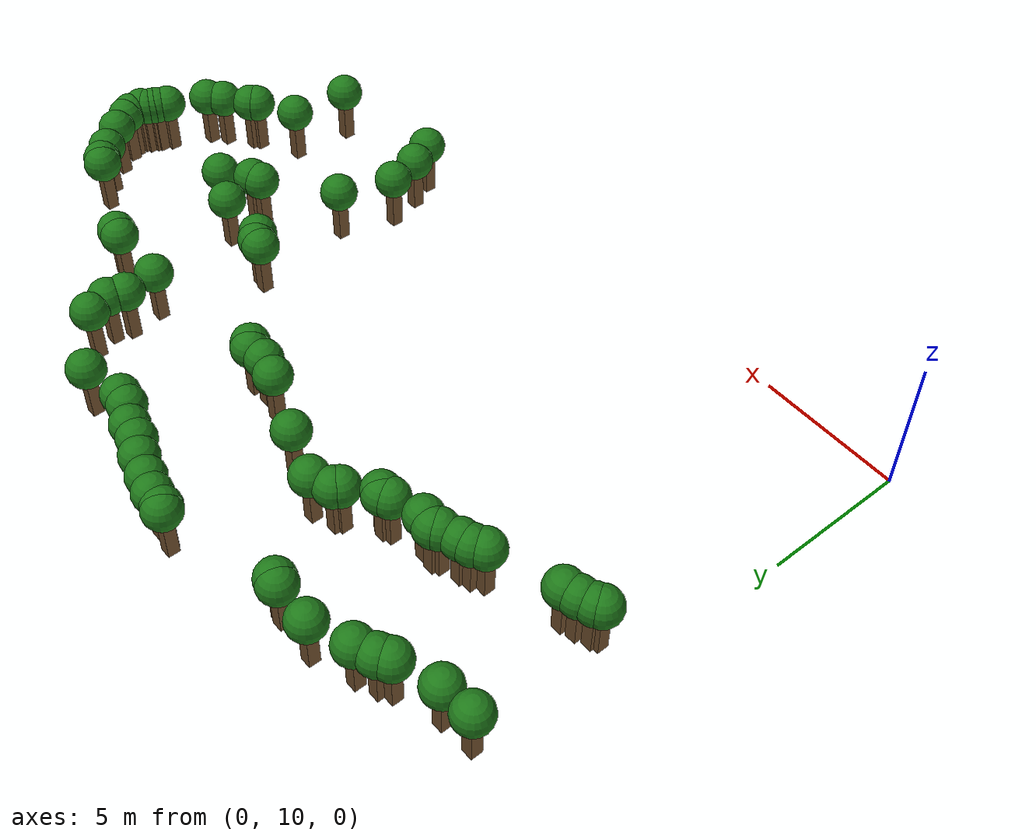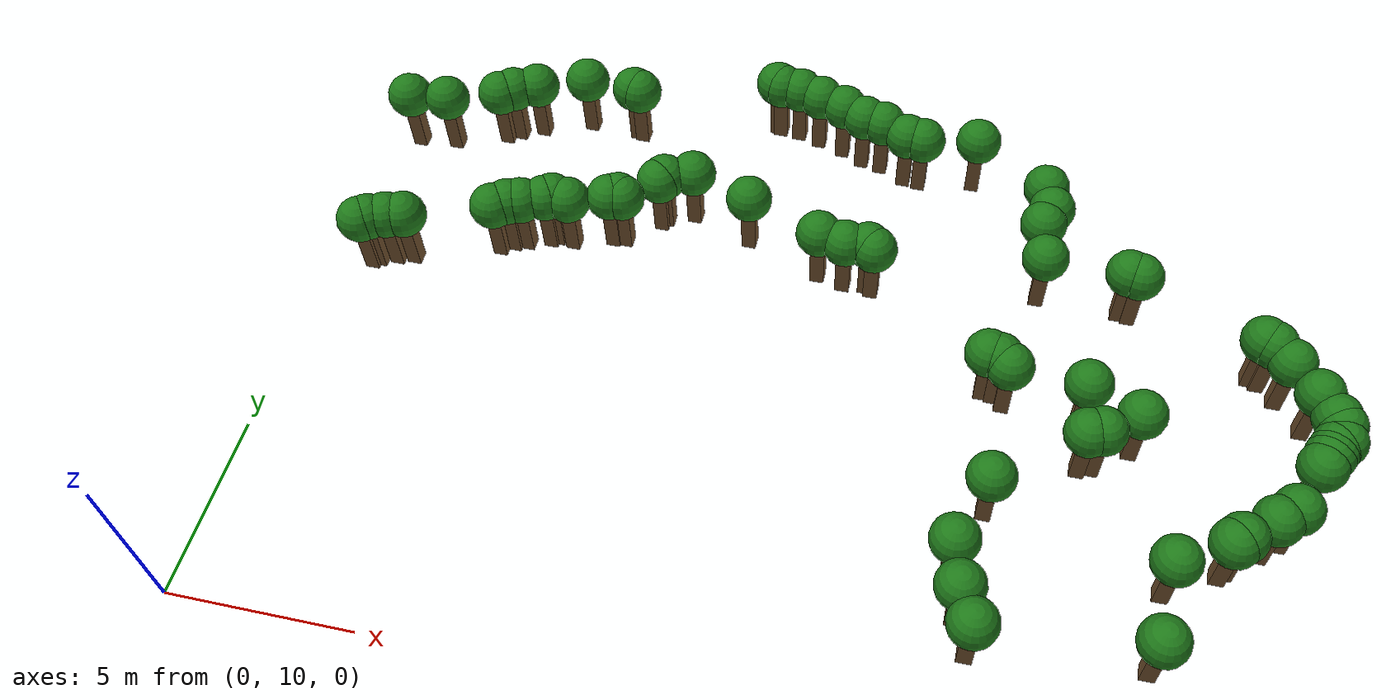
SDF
<sdf version="1.8">
 <model name="bush_trail_nav_walls">
  <static>true</static>
  <link name="trail_wall_1">
   <pose>11.642 28.475 0.750 0 0 0</pose>
   <collision name="c"><geometry><box><size>0.400 0.400 1.500</size></box></geometry></collision>
   <visual name="v">
    <geometry><box><size>0.400 0.400 1.500</size></box></geometry>
    <material><ambient>0.35 0.25 0.15 1</ambient><diffuse>0.45 0.32 0.18 1</diffuse></material>
   </visual>
   <visual name="leaves">
    <pose>0 0 1.200 0 0 0</pose>
    <geometry><sphere><radius>0.650</radius></sphere></geometry>
    <material><ambient>0.08 0.35 0.08 1</ambient><diffuse>0.12 0.48 0.10 1</diffuse></material>
   </visual>
  </link>
  <link name="trail_wall_2">
   <pose>11.760 28.416 0.750 0 0 0</pose>
   <collision name="c"><geometry><box><size>0.400 0.400 1.500</size></box></geometry></collision>
   <visual name="v">
    <geometry><box><size>0.400 0.400 1.500</size></box></geometry>
    <material><ambient>0.35 0.25 0.15 1</ambient><diffuse>0.45 0.32 0.18 1</diffuse></material>
   </visual>
   <visual name="leaves">
    <pose>0 0 1.200 0 0 0</pose>
    <geometry><sphere><radius>0.650</radius></sphere></geometry>
    <material><ambient>0.08 0.35 0.08 1</ambient><diffuse>0.12 0.48 0.10 1</diffuse></material>
   </visual>
  </link>
  <link name="trail_wall_3">
   <pose>12.346 28.358 0.750 0 0 0</pose>
   <collision name="c"><geometry><box><size>0.400 0.400 1.500</size></box></geometry></collision>
   <visual name="v">
    <geometry><box><size>0.400 0.400 1.500</size></box></geometry>
    <material><ambient>0.35 0.25 0.15 1</ambient><diffuse>0.45 0.32 0.18 1</diffuse></material>
   </visual>
   <visual name="leaves">
    <pose>0 0 1.200 0 0 0</pose>
    <geometry><sphere><radius>0.650</radius></sphere></geometry>
    <material><ambient>0.08 0.35 0.08 1</ambient><diffuse>0.12 0.48 0.10 1</diffuse></material>
   </visual>
  </link>
  <link name="trail_wall_4">
   <pose>12.991 28.182 0.750 0 0 0</pose>
   <collision name="c"><geometry><box><size>0.400 0.400 1.500</size></box></geometry></collision>
   <visual name="v">
    <geometry><box><size>0.400 0.400 1.500</size></box></geometry>
    <material><ambient>0.35 0.25 0.15 1</ambient><diffuse>0.45 0.32 0.18 1</diffuse></material>
   </visual>
   <visual name="leaves">
    <pose>0 0 1.200 0 0 0</pose>
    <geometry><sphere><radius>0.650</radius></sphere></geometry>
    <material><ambient>0.08 0.35 0.08 1</ambient><diffuse>0.12 0.48 0.10 1</diffuse></material>
   </visual>
  </link>
  <link name="trail_wall_5">
   <pose>13.754 27.947 0.750 0 0 0</pose>
   <collision name="c"><geometry><box><size>0.400 0.400 1.500</size></box></geometry></collision>
   <visual name="v">
    <geometry><box><size>0.400 0.400 1.500</size></box></geometry>
    <material><ambient>0.35 0.25 0.15 1</ambient><diffuse>0.45 0.32 0.18 1</diffuse></material>
   </visual>
   <visual name="leaves">
    <pose>0 0 1.200 0 0 0</pose>
    <geometry><sphere><radius>0.650</radius></sphere></geometry>
    <material><ambient>0.08 0.35 0.08 1</ambient><diffuse>0.12 0.48 0.10 1</diffuse></material>
   </visual>
  </link>
  <link name="trail_wall_6">
   <pose>14.399 27.654 0.750 0 0 0</pose>
   <collision name="c"><geometry><box><size>0.400 0.400 1.500</size></box></geometry></collision>
   <visual name="v">
    <geometry><box><size>0.400 0.400 1.500</size></box></geometry>
    <material><ambient>0.35 0.25 0.15 1</ambient><diffuse>0.45 0.32 0.18 1</diffuse></material>
   </visual>
   <visual name="leaves">
    <pose>0 0 1.200 0 0 0</pose>
    <geometry><sphere><radius>0.650</radius></sphere></geometry>
    <material><ambient>0.08 0.35 0.08 1</ambient><diffuse>0.12 0.48 0.10 1</diffuse></material>
   </visual>
  </link>
  <link name="trail_wall_7">
   <pose>14.985 27.537 0.750 0 0 0</pose>
   <collision name="c"><geometry><box><size>0.400 0.400 1.500</size></box></geometry></collision>
   <visual name="v">
    <geometry><box><size>0.400 0.400 1.500</size></box></geometry>
    <material><ambient>0.35 0.25 0.15 1</ambient><diffuse>0.45 0.32 0.18 1</diffuse></material>
   </visual>
   <visual name="leaves">
    <pose>0 0 1.200 0 0 0</pose>
    <geometry><sphere><radius>0.650</radius></sphere></geometry>
    <material><ambient>0.08 0.35 0.08 1</ambient><diffuse>0.12 0.48 0.10 1</diffuse></material>
   </visual>
  </link>
  <link name="trail_wall_8">
   <pose>6.012 27.419 0.750 0 0 0</pose>
   <collision name="c"><geometry><box><size>0.400 0.400 1.500</size></box></geometry></collision>
   <visual name="v">
    <geometry><box><size>0.400 0.400 1.500</size></box></geometry>
    <material><ambient>0.35 0.25 0.15 1</ambient><diffuse>0.45 0.32 0.18 1</diffuse></material>
   </visual>
   <visual name="leaves">
    <pose>0 0 1.200 0 0 0</pose>
    <geometry><sphere><radius>0.650</radius></sphere></geometry>
    <material><ambient>0.08 0.35 0.08 1</ambient><diffuse>0.12 0.48 0.10 1</diffuse></material>
   </visual>
  </link>
  <link name="trail_wall_9">
   <pose>17.801 27.419 0.750 0 0 0</pose>
   <collision name="c"><geometry><box><size>0.400 0.400 1.500</size></box></geometry></collision>
   <visual name="v">
    <geometry><box><size>0.400 0.400 1.500</size></box></geometry>
    <material><ambient>0.35 0.25 0.15 1</ambient><diffuse>0.45 0.32 0.18 1</diffuse></material>
   </visual>
   <visual name="leaves">
    <pose>0 0 1.200 0 0 0</pose>
    <geometry><sphere><radius>0.650</radius></sphere></geometry>
    <material><ambient>0.08 0.35 0.08 1</ambient><diffuse>0.12 0.48 0.10 1</diffuse></material>
   </visual>
  </link>
  <link name="trail_wall_10">
   <pose>7.478 27.361 0.750 0 0 0</pose>
   <collision name="c"><geometry><box><size>0.400 0.400 1.500</size></box></geometry></collision>
   <visual name="v">
    <geometry><box><size>0.400 0.400 1.500</size></box></geometry>
    <material><ambient>0.35 0.25 0.15 1</ambient><diffuse>0.45 0.32 0.18 1</diffuse></material>
   </visual>
   <visual name="leaves">
    <pose>0 0 1.200 0 0 0</pose>
    <geometry><sphere><radius>0.650</radius></sphere></geometry>
    <material><ambient>0.08 0.35 0.08 1</ambient><diffuse>0.12 0.48 0.10 1</diffuse></material>
   </visual>
  </link>
  <link name="trail_wall_11">
   <pose>7.654 27.302 0.750 0 0 0</pose>
   <collision name="c"><geometry><box><size>0.400 0.400 1.500</size></box></geometry></collision>
   <visual name="v">
    <geometry><box><size>0.400 0.400 1.500</size></box></geometry>
    <material><ambient>0.35 0.25 0.15 1</ambient><diffuse>0.45 0.32 0.18 1</diffuse></material>
   </visual>
   <visual name="leaves">
    <pose>0 0 1.200 0 0 0</pose>
    <geometry><sphere><radius>0.650</radius></sphere></geometry>
    <material><ambient>0.08 0.35 0.08 1</ambient><diffuse>0.12 0.48 0.10 1</diffuse></material>
   </visual>
  </link>
  <link name="trail_wall_12">
   <pose>15.748 27.185 0.750 0 0 0</pose>
   <collision name="c"><geometry><box><size>0.400 0.400 1.500</size></box></geometry></collision>
   <visual name="v">
    <geometry><box><size>0.400 0.400 1.500</size></box></geometry>
    <material><ambient>0.35 0.25 0.15 1</ambient><diffuse>0.45 0.32 0.18 1</diffuse></material>
   </visual>
   <visual name="leaves">
    <pose>0 0 1.200 0 0 0</pose>
    <geometry><sphere><radius>0.650</radius></sphere></geometry>
    <material><ambient>0.08 0.35 0.08 1</ambient><diffuse>0.12 0.48 0.10 1</diffuse></material>
   </visual>
  </link>
  <link name="trail_wall_13">
   <pose>16.217 27.126 0.750 0 0 0</pose>
   <collision name="c"><geometry><box><size>0.400 0.400 1.500</size></box></geometry></collision>
   <visual name="v">
    <geometry><box><size>0.400 0.400 1.500</size></box></geometry>
    <material><ambient>0.35 0.25 0.15 1</ambient><diffuse>0.45 0.32 0.18 1</diffuse></material>
   </visual>
   <visual name="leaves">
    <pose>0 0 1.200 0 0 0</pose>
    <geometry><sphere><radius>0.650</radius></sphere></geometry>
    <material><ambient>0.08 0.35 0.08 1</ambient><diffuse>0.12 0.48 0.10 1</diffuse></material>
   </visual>
  </link>
  <link name="trail_wall_14">
   <pose>4.604 26.891 0.750 0 0 0</pose>
   <collision name="c"><geometry><box><size>0.400 0.400 1.500</size></box></geometry></collision>
   <visual name="v">
    <geometry><box><size>0.400 0.400 1.500</size></box></geometry>
    <material><ambient>0.35 0.25 0.15 1</ambient><diffuse>0.45 0.32 0.18 1</diffuse></material>
   </visual>
   <visual name="leaves">
    <pose>0 0 1.200 0 0 0</pose>
    <geometry><sphere><radius>0.650</radius></sphere></geometry>
    <material><ambient>0.08 0.35 0.08 1</ambient><diffuse>0.12 0.48 0.10 1</diffuse></material>
   </visual>
  </link>
  <link name="trail_wall_15">
   <pose>3.959 26.598 0.750 0 0 0</pose>
   <collision name="c"><geometry><box><size>0.400 0.400 1.500</size></box></geometry></collision>
   <visual name="v">
    <geometry><box><size>0.400 0.400 1.500</size></box></geometry>
    <material><ambient>0.35 0.25 0.15 1</ambient><diffuse>0.45 0.32 0.18 1</diffuse></material>
   </visual>
   <visual name="leaves">
    <pose>0 0 1.200 0 0 0</pose>
    <geometry><sphere><radius>0.650</radius></sphere></geometry>
    <material><ambient>0.08 0.35 0.08 1</ambient><diffuse>0.12 0.48 0.10 1</diffuse></material>
   </visual>
  </link>
  <link name="trail_wall_16">
   <pose>3.607 26.364 0.750 0 0 0</pose>
   <collision name="c"><geometry><box><size>0.400 0.400 1.500</size></box></geometry></collision>
   <visual name="v">
    <geometry><box><size>0.400 0.400 1.500</size></box></geometry>
    <material><ambient>0.35 0.25 0.15 1</ambient><diffuse>0.45 0.32 0.18 1</diffuse></material>
   </visual>
   <visual name="leaves">
    <pose>0 0 1.200 0 0 0</pose>
    <geometry><sphere><radius>0.650</radius></sphere></geometry>
    <material><ambient>0.08 0.35 0.08 1</ambient><diffuse>0.12 0.48 0.10 1</diffuse></material>
   </visual>
  </link>
  <link name="trail_wall_17">
   <pose>19.912 26.070 0.750 0 0 0</pose>
   <collision name="c"><geometry><box><size>0.400 0.400 1.500</size></box></geometry></collision>
   <visual name="v">
    <geometry><box><size>0.400 0.400 1.500</size></box></geometry>
    <material><ambient>0.35 0.25 0.15 1</ambient><diffuse>0.45 0.32 0.18 1</diffuse></material>
   </visual>
   <visual name="leaves">
    <pose>0 0 1.200 0 0 0</pose>
    <geometry><sphere><radius>0.650</radius></sphere></geometry>
    <material><ambient>0.08 0.35 0.08 1</ambient><diffuse>0.12 0.48 0.10 1</diffuse></material>
   </visual>
  </link>
  <link name="trail_wall_18">
   <pose>2.141 25.836 0.750 0 0 0</pose>
   <collision name="c"><geometry><box><size>0.400 0.400 1.500</size></box></geometry></collision>
   <visual name="v">
    <geometry><box><size>0.400 0.400 1.500</size></box></geometry>
    <material><ambient>0.35 0.25 0.15 1</ambient><diffuse>0.45 0.32 0.18 1</diffuse></material>
   </visual>
   <visual name="leaves">
    <pose>0 0 1.200 0 0 0</pose>
    <geometry><sphere><radius>0.650</radius></sphere></geometry>
    <material><ambient>0.08 0.35 0.08 1</ambient><diffuse>0.12 0.48 0.10 1</diffuse></material>
   </visual>
  </link>
  <link name="trail_wall_19">
   <pose>1.026 25.718 0.750 0 0 0</pose>
   <collision name="c"><geometry><box><size>0.400 0.400 1.500</size></box></geometry></collision>
   <visual name="v">
    <geometry><box><size>0.400 0.400 1.500</size></box></geometry>
    <material><ambient>0.35 0.25 0.15 1</ambient><diffuse>0.45 0.32 0.18 1</diffuse></material>
   </visual>
   <visual name="leaves">
    <pose>0 0 1.200 0 0 0</pose>
    <geometry><sphere><radius>0.650</radius></sphere></geometry>
    <material><ambient>0.08 0.35 0.08 1</ambient><diffuse>0.12 0.48 0.10 1</diffuse></material>
   </visual>
  </link>
  <link name="trail_wall_21">
   <pose>20.147 25.308 0.750 0 0 0</pose>
   <collision name="c"><geometry><box><size>0.400 0.400 1.500</size></box></geometry></collision>
   <visual name="v">
    <geometry><box><size>0.400 0.400 1.500</size></box></geometry>
    <material><ambient>0.35 0.25 0.15 1</ambient><diffuse>0.45 0.32 0.18 1</diffuse></material>
   </visual>
   <visual name="leaves">
    <pose>0 0 1.200 0 0 0</pose>
    <geometry><sphere><radius>0.650</radius></sphere></geometry>
    <material><ambient>0.08 0.35 0.08 1</ambient><diffuse>0.12 0.48 0.10 1</diffuse></material>
   </visual>
  </link>
  <link name="trail_wall_23">
   <pose>19.971 24.721 0.750 0 0 0</pose>
   <collision name="c"><geometry><box><size>0.400 0.400 1.500</size></box></geometry></collision>
   <visual name="v">
    <geometry><box><size>0.400 0.400 1.500</size></box></geometry>
    <material><ambient>0.35 0.25 0.15 1</ambient><diffuse>0.45 0.32 0.18 1</diffuse></material>
   </visual>
   <visual name="leaves">
    <pose>0 0 1.200 0 0 0</pose>
    <geometry><sphere><radius>0.650</radius></sphere></geometry>
    <material><ambient>0.08 0.35 0.08 1</ambient><diffuse>0.12 0.48 0.10 1</diffuse></material>
   </visual>
  </link>
  <link name="trail_wall_24">
   <pose>10.000 24.487 0.750 0 0 0</pose>
   <collision name="c"><geometry><box><size>0.400 0.400 1.500</size></box></geometry></collision>
   <visual name="v">
    <geometry><box><size>0.400 0.400 1.500</size></box></geometry>
    <material><ambient>0.35 0.25 0.15 1</ambient><diffuse>0.45 0.32 0.18 1</diffuse></material>
   </visual>
   <visual name="leaves">
    <pose>0 0 1.200 0 0 0</pose>
    <geometry><sphere><radius>0.650</radius></sphere></geometry>
    <material><ambient>0.08 0.35 0.08 1</ambient><diffuse>0.12 0.48 0.10 1</diffuse></material>
   </visual>
  </link>
  <link name="trail_wall_26">
   <pose>9.238 24.194 0.750 0 0 0</pose>
   <collision name="c"><geometry><box><size>0.400 0.400 1.500</size></box></geometry></collision>
   <visual name="v">
    <geometry><box><size>0.400 0.400 1.500</size></box></geometry>
    <material><ambient>0.35 0.25 0.15 1</ambient><diffuse>0.45 0.32 0.18 1</diffuse></material>
   </visual>
   <visual name="leaves">
    <pose>0 0 1.200 0 0 0</pose>
    <geometry><sphere><radius>0.650</radius></sphere></geometry>
    <material><ambient>0.08 0.35 0.08 1</ambient><diffuse>0.12 0.48 0.10 1</diffuse></material>
   </visual>
  </link>
  <link name="trail_wall_27">
   <pose>9.120 24.018 0.750 0 0 0</pose>
   <collision name="c"><geometry><box><size>0.400 0.400 1.500</size></box></geometry></collision>
   <visual name="v">
    <geometry><box><size>0.400 0.400 1.500</size></box></geometry>
    <material><ambient>0.35 0.25 0.15 1</ambient><diffuse>0.45 0.32 0.18 1</diffuse></material>
   </visual>
   <visual name="leaves">
    <pose>0 0 1.200 0 0 0</pose>
    <geometry><sphere><radius>0.650</radius></sphere></geometry>
    <material><ambient>0.08 0.35 0.08 1</ambient><diffuse>0.12 0.48 0.10 1</diffuse></material>
   </visual>
  </link>
  <link name="trail_wall_28">
   <pose>11.760 23.900 0.750 0 0 0</pose>
   <collision name="c"><geometry><box><size>0.400 0.400 1.500</size></box></geometry></collision>
   <visual name="v">
    <geometry><box><size>0.400 0.400 1.500</size></box></geometry>
    <material><ambient>0.35 0.25 0.15 1</ambient><diffuse>0.45 0.32 0.18 1</diffuse></material>
   </visual>
   <visual name="leaves">
    <pose>0 0 1.200 0 0 0</pose>
    <geometry><sphere><radius>0.650</radius></sphere></geometry>
    <material><ambient>0.08 0.35 0.08 1</ambient><diffuse>0.12 0.48 0.10 1</diffuse></material>
   </visual>
  </link>
  <link name="trail_wall_31">
   <pose>20.147 23.548 0.750 0 0 0</pose>
   <collision name="c"><geometry><box><size>0.400 0.400 1.500</size></box></geometry></collision>
   <visual name="v">
    <geometry><box><size>0.400 0.400 1.500</size></box></geometry>
    <material><ambient>0.35 0.25 0.15 1</ambient><diffuse>0.45 0.32 0.18 1</diffuse></material>
   </visual>
   <visual name="leaves">
    <pose>0 0 1.200 0 0 0</pose>
    <geometry><sphere><radius>0.650</radius></sphere></geometry>
    <material><ambient>0.08 0.35 0.08 1</ambient><diffuse>0.12 0.48 0.10 1</diffuse></material>
   </visual>
  </link>
  <link name="trail_wall_32">
   <pose>22.434 23.490 0.750 0 0 0</pose>
   <collision name="c"><geometry><box><size>0.400 0.400 1.500</size></box></geometry></collision>
   <visual name="v">
    <geometry><box><size>0.400 0.400 1.500</size></box></geometry>
    <material><ambient>0.35 0.25 0.15 1</ambient><diffuse>0.45 0.32 0.18 1</diffuse></material>
   </visual>
   <visual name="leaves">
    <pose>0 0 1.200 0 0 0</pose>
    <geometry><sphere><radius>0.650</radius></sphere></geometry>
    <material><ambient>0.08 0.35 0.08 1</ambient><diffuse>0.12 0.48 0.10 1</diffuse></material>
   </visual>
  </link>
  <link name="trail_wall_33">
   <pose>22.727 23.431 0.750 0 0 0</pose>
   <collision name="c"><geometry><box><size>0.400 0.400 1.500</size></box></geometry></collision>
   <visual name="v">
    <geometry><box><size>0.400 0.400 1.500</size></box></geometry>
    <material><ambient>0.35 0.25 0.15 1</ambient><diffuse>0.45 0.32 0.18 1</diffuse></material>
   </visual>
   <visual name="leaves">
    <pose>0 0 1.200 0 0 0</pose>
    <geometry><sphere><radius>0.650</radius></sphere></geometry>
    <material><ambient>0.08 0.35 0.08 1</ambient><diffuse>0.12 0.48 0.10 1</diffuse></material>
   </visual>
  </link>
  <link name="trail_wall_35">
   <pose>8.123 23.255 0.750 0 0 0</pose>
   <collision name="c"><geometry><box><size>0.400 0.400 1.500</size></box></geometry></collision>
   <visual name="v">
    <geometry><box><size>0.400 0.400 1.500</size></box></geometry>
    <material><ambient>0.35 0.25 0.15 1</ambient><diffuse>0.45 0.32 0.18 1</diffuse></material>
   </visual>
   <visual name="leaves">
    <pose>0 0 1.200 0 0 0</pose>
    <geometry><sphere><radius>0.650</radius></sphere></geometry>
    <material><ambient>0.08 0.35 0.08 1</ambient><diffuse>0.12 0.48 0.10 1</diffuse></material>
   </visual>
  </link>
  <link name="trail_wall_36">
   <pose>8.240 23.196 0.750 0 0 0</pose>
   <collision name="c"><geometry><box><size>0.400 0.400 1.500</size></box></geometry></collision>
   <visual name="v">
    <geometry><box><size>0.400 0.400 1.500</size></box></geometry>
    <material><ambient>0.35 0.25 0.15 1</ambient><diffuse>0.45 0.32 0.18 1</diffuse></material>
   </visual>
   <visual name="leaves">
    <pose>0 0 1.200 0 0 0</pose>
    <geometry><sphere><radius>0.650</radius></sphere></geometry>
    <material><ambient>0.08 0.35 0.08 1</ambient><diffuse>0.12 0.48 0.10 1</diffuse></material>
   </visual>
  </link>
  <link name="trail_wall_37">
   <pose>7.889 23.138 0.750 0 0 0</pose>
   <collision name="c"><geometry><box><size>0.400 0.400 1.500</size></box></geometry></collision>
   <visual name="v">
    <geometry><box><size>0.400 0.400 1.500</size></box></geometry>
    <material><ambient>0.35 0.25 0.15 1</ambient><diffuse>0.45 0.32 0.18 1</diffuse></material>
   </visual>
   <visual name="leaves">
    <pose>0 0 1.200 0 0 0</pose>
    <geometry><sphere><radius>0.650</radius></sphere></geometry>
    <material><ambient>0.08 0.35 0.08 1</ambient><diffuse>0.12 0.48 0.10 1</diffuse></material>
   </visual>
  </link>
  <link name="trail_wall_38">
   <pose>13.930 23.079 0.750 0 0 0</pose>
   <collision name="c"><geometry><box><size>0.400 0.400 1.500</size></box></geometry></collision>
   <visual name="v">
    <geometry><box><size>0.400 0.400 1.500</size></box></geometry>
    <material><ambient>0.35 0.25 0.15 1</ambient><diffuse>0.45 0.32 0.18 1</diffuse></material>
   </visual>
   <visual name="leaves">
    <pose>0 0 1.200 0 0 0</pose>
    <geometry><sphere><radius>0.650</radius></sphere></geometry>
    <material><ambient>0.08 0.35 0.08 1</ambient><diffuse>0.12 0.48 0.10 1</diffuse></material>
   </visual>
  </link>
  <link name="trail_wall_39">
   <pose>15.337 22.962 0.750 0 0 0</pose>
   <collision name="c"><geometry><box><size>0.400 0.400 1.500</size></box></geometry></collision>
   <visual name="v">
    <geometry><box><size>0.400 0.400 1.500</size></box></geometry>
    <material><ambient>0.35 0.25 0.15 1</ambient><diffuse>0.45 0.32 0.18 1</diffuse></material>
   </visual>
   <visual name="leaves">
    <pose>0 0 1.200 0 0 0</pose>
    <geometry><sphere><radius>0.650</radius></sphere></geometry>
    <material><ambient>0.08 0.35 0.08 1</ambient><diffuse>0.12 0.48 0.10 1</diffuse></material>
   </visual>
  </link>
  <link name="trail_wall_40">
   <pose>14.692 22.903 0.750 0 0 0</pose>
   <collision name="c"><geometry><box><size>0.400 0.400 1.500</size></box></geometry></collision>
   <visual name="v">
    <geometry><box><size>0.400 0.400 1.500</size></box></geometry>
    <material><ambient>0.35 0.25 0.15 1</ambient><diffuse>0.45 0.32 0.18 1</diffuse></material>
   </visual>
   <visual name="leaves">
    <pose>0 0 1.200 0 0 0</pose>
    <geometry><sphere><radius>0.650</radius></sphere></geometry>
    <material><ambient>0.08 0.35 0.08 1</ambient><diffuse>0.12 0.48 0.10 1</diffuse></material>
   </visual>
  </link>
  <link name="trail_wall_41">
   <pose>6.305 22.845 0.750 0 0 0</pose>
   <collision name="c"><geometry><box><size>0.400 0.400 1.500</size></box></geometry></collision>
   <visual name="v">
    <geometry><box><size>0.400 0.400 1.500</size></box></geometry>
    <material><ambient>0.35 0.25 0.15 1</ambient><diffuse>0.45 0.32 0.18 1</diffuse></material>
   </visual>
   <visual name="leaves">
    <pose>0 0 1.200 0 0 0</pose>
    <geometry><sphere><radius>0.650</radius></sphere></geometry>
    <material><ambient>0.08 0.35 0.08 1</ambient><diffuse>0.12 0.48 0.10 1</diffuse></material>
   </visual>
  </link>
  <link name="trail_wall_42">
   <pose>15.513 22.845 0.750 0 0 0</pose>
   <collision name="c"><geometry><box><size>0.400 0.400 1.500</size></box></geometry></collision>
   <visual name="v">
    <geometry><box><size>0.400 0.400 1.500</size></box></geometry>
    <material><ambient>0.35 0.25 0.15 1</ambient><diffuse>0.45 0.32 0.18 1</diffuse></material>
   </visual>
   <visual name="leaves">
    <pose>0 0 1.200 0 0 0</pose>
    <geometry><sphere><radius>0.650</radius></sphere></geometry>
    <material><ambient>0.08 0.35 0.08 1</ambient><diffuse>0.12 0.48 0.10 1</diffuse></material>
   </visual>
  </link>
  <link name="trail_wall_43">
   <pose>6.774 22.786 0.750 0 0 0</pose>
   <collision name="c"><geometry><box><size>0.400 0.400 1.500</size></box></geometry></collision>
   <visual name="v">
    <geometry><box><size>0.400 0.400 1.500</size></box></geometry>
    <material><ambient>0.35 0.25 0.15 1</ambient><diffuse>0.45 0.32 0.18 1</diffuse></material>
   </visual>
   <visual name="leaves">
    <pose>0 0 1.200 0 0 0</pose>
    <geometry><sphere><radius>0.650</radius></sphere></geometry>
    <material><ambient>0.08 0.35 0.08 1</ambient><diffuse>0.12 0.48 0.10 1</diffuse></material>
   </visual>
  </link>
  <link name="trail_wall_44">
   <pose>6.129 22.727 0.750 0 0 0</pose>
   <collision name="c"><geometry><box><size>0.400 0.400 1.500</size></box></geometry></collision>
   <visual name="v">
    <geometry><box><size>0.400 0.400 1.500</size></box></geometry>
    <material><ambient>0.35 0.25 0.15 1</ambient><diffuse>0.45 0.32 0.18 1</diffuse></material>
   </visual>
   <visual name="leaves">
    <pose>0 0 1.200 0 0 0</pose>
    <geometry><sphere><radius>0.650</radius></sphere></geometry>
    <material><ambient>0.08 0.35 0.08 1</ambient><diffuse>0.12 0.48 0.10 1</diffuse></material>
   </visual>
  </link>
  <link name="trail_wall_47">
   <pose>5.484 22.493 0.750 0 0 0</pose>
   <collision name="c"><geometry><box><size>0.400 0.400 1.500</size></box></geometry></collision>
   <visual name="v">
    <geometry><box><size>0.400 0.400 1.500</size></box></geometry>
    <material><ambient>0.35 0.25 0.15 1</ambient><diffuse>0.45 0.32 0.18 1</diffuse></material>
   </visual>
   <visual name="leaves">
    <pose>0 0 1.200 0 0 0</pose>
    <geometry><sphere><radius>0.650</radius></sphere></geometry>
    <material><ambient>0.08 0.35 0.08 1</ambient><diffuse>0.12 0.48 0.10 1</diffuse></material>
   </visual>
  </link>
  <link name="trail_wall_48">
   <pose>5.132 22.375 0.750 0 0 0</pose>
   <collision name="c"><geometry><box><size>0.400 0.400 1.500</size></box></geometry></collision>
   <visual name="v">
    <geometry><box><size>0.400 0.400 1.500</size></box></geometry>
    <material><ambient>0.35 0.25 0.15 1</ambient><diffuse>0.45 0.32 0.18 1</diffuse></material>
   </visual>
   <visual name="leaves">
    <pose>0 0 1.200 0 0 0</pose>
    <geometry><sphere><radius>0.650</radius></sphere></geometry>
    <material><ambient>0.08 0.35 0.08 1</ambient><diffuse>0.12 0.48 0.10 1</diffuse></material>
   </visual>
  </link>
  <link name="trail_wall_50">
   <pose>4.780 22.141 0.750 0 0 0</pose>
   <collision name="c"><geometry><box><size>0.400 0.400 1.500</size></box></geometry></collision>
   <visual name="v">
    <geometry><box><size>0.400 0.400 1.500</size></box></geometry>
    <material><ambient>0.35 0.25 0.15 1</ambient><diffuse>0.45 0.32 0.18 1</diffuse></material>
   </visual>
   <visual name="leaves">
    <pose>0 0 1.200 0 0 0</pose>
    <geometry><sphere><radius>0.650</radius></sphere></geometry>
    <material><ambient>0.08 0.35 0.08 1</ambient><diffuse>0.12 0.48 0.10 1</diffuse></material>
   </visual>
  </link>
  <link name="trail_wall_51">
   <pose>26.070 22.023 0.750 0 0 0</pose>
   <collision name="c"><geometry><box><size>0.400 0.400 1.500</size></box></geometry></collision>
   <visual name="v">
    <geometry><box><size>0.400 0.400 1.500</size></box></geometry>
    <material><ambient>0.35 0.25 0.15 1</ambient><diffuse>0.45 0.32 0.18 1</diffuse></material>
   </visual>
   <visual name="leaves">
    <pose>0 0 1.200 0 0 0</pose>
    <geometry><sphere><radius>0.650</radius></sphere></geometry>
    <material><ambient>0.08 0.35 0.08 1</ambient><diffuse>0.12 0.48 0.10 1</diffuse></material>
   </visual>
  </link>
  <link name="trail_wall_52">
   <pose>26.305 21.906 0.750 0 0 0</pose>
   <collision name="c"><geometry><box><size>0.400 0.400 1.500</size></box></geometry></collision>
   <visual name="v">
    <geometry><box><size>0.400 0.400 1.500</size></box></geometry>
    <material><ambient>0.35 0.25 0.15 1</ambient><diffuse>0.45 0.32 0.18 1</diffuse></material>
   </visual>
   <visual name="leaves">
    <pose>0 0 1.200 0 0 0</pose>
    <geometry><sphere><radius>0.650</radius></sphere></geometry>
    <material><ambient>0.08 0.35 0.08 1</ambient><diffuse>0.12 0.48 0.10 1</diffuse></material>
   </visual>
  </link>
  <link name="trail_wall_56">
   <pose>26.774 21.437 0.750 0 0 0</pose>
   <collision name="c"><geometry><box><size>0.400 0.400 1.500</size></box></geometry></collision>
   <visual name="v">
    <geometry><box><size>0.400 0.400 1.500</size></box></geometry>
    <material><ambient>0.35 0.25 0.15 1</ambient><diffuse>0.45 0.32 0.18 1</diffuse></material>
   </visual>
   <visual name="leaves">
    <pose>0 0 1.200 0 0 0</pose>
    <geometry><sphere><radius>0.650</radius></sphere></geometry>
    <material><ambient>0.08 0.35 0.08 1</ambient><diffuse>0.12 0.48 0.10 1</diffuse></material>
   </visual>
  </link>
  <link name="trail_wall_57">
   <pose>2.434 21.320 0.750 0 0 0</pose>
   <collision name="c"><geometry><box><size>0.400 0.400 1.500</size></box></geometry></collision>
   <visual name="v">
    <geometry><box><size>0.400 0.400 1.500</size></box></geometry>
    <material><ambient>0.35 0.25 0.15 1</ambient><diffuse>0.45 0.32 0.18 1</diffuse></material>
   </visual>
   <visual name="leaves">
    <pose>0 0 1.200 0 0 0</pose>
    <geometry><sphere><radius>0.650</radius></sphere></geometry>
    <material><ambient>0.08 0.35 0.08 1</ambient><diffuse>0.12 0.48 0.10 1</diffuse></material>
   </visual>
  </link>
  <link name="trail_wall_58">
   <pose>1.965 21.202 0.750 0 0 0</pose>
   <collision name="c"><geometry><box><size>0.400 0.400 1.500</size></box></geometry></collision>
   <visual name="v">
    <geometry><box><size>0.400 0.400 1.500</size></box></geometry>
    <material><ambient>0.35 0.25 0.15 1</ambient><diffuse>0.45 0.32 0.18 1</diffuse></material>
   </visual>
   <visual name="leaves">
    <pose>0 0 1.200 0 0 0</pose>
    <geometry><sphere><radius>0.650</radius></sphere></geometry>
    <material><ambient>0.08 0.35 0.08 1</ambient><diffuse>0.12 0.48 0.10 1</diffuse></material>
   </visual>
  </link>
  <link name="trail_wall_60">
   <pose>1.496 21.026 0.750 0 0 0</pose>
   <collision name="c"><geometry><box><size>0.400 0.400 1.500</size></box></geometry></collision>
   <visual name="v">
    <geometry><box><size>0.400 0.400 1.500</size></box></geometry>
    <material><ambient>0.35 0.25 0.15 1</ambient><diffuse>0.45 0.32 0.18 1</diffuse></material>
   </visual>
   <visual name="leaves">
    <pose>0 0 1.200 0 0 0</pose>
    <geometry><sphere><radius>0.650</radius></sphere></geometry>
    <material><ambient>0.08 0.35 0.08 1</ambient><diffuse>0.12 0.48 0.10 1</diffuse></material>
   </visual>
  </link>
  <link name="trail_wall_61">
   <pose>1.320 20.909 0.750 0 0 0</pose>
   <collision name="c"><geometry><box><size>0.400 0.400 1.500</size></box></geometry></collision>
   <visual name="v">
    <geometry><box><size>0.400 0.400 1.500</size></box></geometry>
    <material><ambient>0.35 0.25 0.15 1</ambient><diffuse>0.45 0.32 0.18 1</diffuse></material>
   </visual>
   <visual name="leaves">
    <pose>0 0 1.200 0 0 0</pose>
    <geometry><sphere><radius>0.650</radius></sphere></geometry>
    <material><ambient>0.08 0.35 0.08 1</ambient><diffuse>0.12 0.48 0.10 1</diffuse></material>
   </visual>
  </link>
  <link name="trail_wall_64">
   <pose>27.478 20.616 0.750 0 0 0</pose>
   <collision name="c"><geometry><box><size>0.400 0.400 1.500</size></box></geometry></collision>
   <visual name="v">
    <geometry><box><size>0.400 0.400 1.500</size></box></geometry>
    <material><ambient>0.35 0.25 0.15 1</ambient><diffuse>0.45 0.32 0.18 1</diffuse></material>
   </visual>
   <visual name="leaves">
    <pose>0 0 1.200 0 0 0</pose>
    <geometry><sphere><radius>0.650</radius></sphere></geometry>
    <material><ambient>0.08 0.35 0.08 1</ambient><diffuse>0.12 0.48 0.10 1</diffuse></material>
   </visual>
  </link>
  <link name="trail_wall_69">
   <pose>19.032 20.088 0.750 0 0 0</pose>
   <collision name="c"><geometry><box><size>0.400 0.400 1.500</size></box></geometry></collision>
   <visual name="v">
    <geometry><box><size>0.400 0.400 1.500</size></box></geometry>
    <material><ambient>0.35 0.25 0.15 1</ambient><diffuse>0.45 0.32 0.18 1</diffuse></material>
   </visual>
   <visual name="leaves">
    <pose>0 0 1.200 0 0 0</pose>
    <geometry><sphere><radius>0.650</radius></sphere></geometry>
    <material><ambient>0.08 0.35 0.08 1</ambient><diffuse>0.12 0.48 0.10 1</diffuse></material>
   </visual>
  </link>
  <link name="trail_wall_70">
   <pose>19.326 20.029 0.750 0 0 0</pose>
   <collision name="c"><geometry><box><size>0.400 0.400 1.500</size></box></geometry></collision>
   <visual name="v">
    <geometry><box><size>0.400 0.400 1.500</size></box></geometry>
    <material><ambient>0.35 0.25 0.15 1</ambient><diffuse>0.45 0.32 0.18 1</diffuse></material>
   </visual>
   <visual name="leaves">
    <pose>0 0 1.200 0 0 0</pose>
    <geometry><sphere><radius>0.650</radius></sphere></geometry>
    <material><ambient>0.08 0.35 0.08 1</ambient><diffuse>0.12 0.48 0.10 1</diffuse></material>
   </visual>
  </link>
  <link name="trail_wall_71">
   <pose>27.889 19.971 0.750 0 0 0</pose>
   <collision name="c"><geometry><box><size>0.400 0.400 1.500</size></box></geometry></collision>
   <visual name="v">
    <geometry><box><size>0.400 0.400 1.500</size></box></geometry>
    <material><ambient>0.35 0.25 0.15 1</ambient><diffuse>0.45 0.32 0.18 1</diffuse></material>
   </visual>
   <visual name="leaves">
    <pose>0 0 1.200 0 0 0</pose>
    <geometry><sphere><radius>0.650</radius></sphere></geometry>
    <material><ambient>0.08 0.35 0.08 1</ambient><diffuse>0.12 0.48 0.10 1</diffuse></material>
   </visual>
  </link>
  <link name="trail_wall_73">
   <pose>19.619 19.795 0.750 0 0 0</pose>
   <collision name="c"><geometry><box><size>0.400 0.400 1.500</size></box></geometry></collision>
   <visual name="v">
    <geometry><box><size>0.400 0.400 1.500</size></box></geometry>
    <material><ambient>0.35 0.25 0.15 1</ambient><diffuse>0.45 0.32 0.18 1</diffuse></material>
   </visual>
   <visual name="leaves">
    <pose>0 0 1.200 0 0 0</pose>
    <geometry><sphere><radius>0.650</radius></sphere></geometry>
    <material><ambient>0.08 0.35 0.08 1</ambient><diffuse>0.12 0.48 0.10 1</diffuse></material>
   </visual>
  </link>
  <link name="trail_wall_74">
   <pose>28.006 19.736 0.750 0 0 0</pose>
   <collision name="c"><geometry><box><size>0.400 0.400 1.500</size></box></geometry></collision>
   <visual name="v">
    <geometry><box><size>0.400 0.400 1.500</size></box></geometry>
    <material><ambient>0.35 0.25 0.15 1</ambient><diffuse>0.45 0.32 0.18 1</diffuse></material>
   </visual>
   <visual name="leaves">
    <pose>0 0 1.200 0 0 0</pose>
    <geometry><sphere><radius>0.650</radius></sphere></geometry>
    <material><ambient>0.08 0.35 0.08 1</ambient><diffuse>0.12 0.48 0.10 1</diffuse></material>
   </visual>
  </link>
  <link name="trail_wall_75">
   <pose>21.672 19.677 0.750 0 0 0</pose>
   <collision name="c"><geometry><box><size>0.400 0.400 1.500</size></box></geometry></collision>
   <visual name="v">
    <geometry><box><size>0.400 0.400 1.500</size></box></geometry>
    <material><ambient>0.35 0.25 0.15 1</ambient><diffuse>0.45 0.32 0.18 1</diffuse></material>
   </visual>
   <visual name="leaves">
    <pose>0 0 1.200 0 0 0</pose>
    <geometry><sphere><radius>0.650</radius></sphere></geometry>
    <material><ambient>0.08 0.35 0.08 1</ambient><diffuse>0.12 0.48 0.10 1</diffuse></material>
   </visual>
  </link>
  <link name="trail_wall_82">
   <pose>28.006 19.267 0.750 0 0 0</pose>
   <collision name="c"><geometry><box><size>0.400 0.400 1.500</size></box></geometry></collision>
   <visual name="v">
    <geometry><box><size>0.400 0.400 1.500</size></box></geometry>
    <material><ambient>0.35 0.25 0.15 1</ambient><diffuse>0.45 0.32 0.18 1</diffuse></material>
   </visual>
   <visual name="leaves">
    <pose>0 0 1.200 0 0 0</pose>
    <geometry><sphere><radius>0.650</radius></sphere></geometry>
    <material><ambient>0.08 0.35 0.08 1</ambient><diffuse>0.12 0.48 0.10 1</diffuse></material>
   </visual>
  </link>
  <link name="trail_wall_83">
   <pose>27.889 19.150 0.750 0 0 0</pose>
   <collision name="c"><geometry><box><size>0.400 0.400 1.500</size></box></geometry></collision>
   <visual name="v">
    <geometry><box><size>0.400 0.400 1.500</size></box></geometry>
    <material><ambient>0.35 0.25 0.15 1</ambient><diffuse>0.45 0.32 0.18 1</diffuse></material>
   </visual>
   <visual name="leaves">
    <pose>0 0 1.200 0 0 0</pose>
    <geometry><sphere><radius>0.650</radius></sphere></geometry>
    <material><ambient>0.08 0.35 0.08 1</ambient><diffuse>0.12 0.48 0.10 1</diffuse></material>
   </visual>
  </link>
  <link name="trail_wall_84">
   <pose>23.079 19.032 0.750 0 0 0</pose>
   <collision name="c"><geometry><box><size>0.400 0.400 1.500</size></box></geometry></collision>
   <visual name="v">
    <geometry><box><size>0.400 0.400 1.500</size></box></geometry>
    <material><ambient>0.35 0.25 0.15 1</ambient><diffuse>0.45 0.32 0.18 1</diffuse></material>
   </visual>
   <visual name="leaves">
    <pose>0 0 1.200 0 0 0</pose>
    <geometry><sphere><radius>0.650</radius></sphere></geometry>
    <material><ambient>0.08 0.35 0.08 1</ambient><diffuse>0.12 0.48 0.10 1</diffuse></material>
   </visual>
  </link>
  <link name="trail_wall_85">
   <pose>27.771 18.915 0.750 0 0 0</pose>
   <collision name="c"><geometry><box><size>0.400 0.400 1.500</size></box></geometry></collision>
   <visual name="v">
    <geometry><box><size>0.400 0.400 1.500</size></box></geometry>
    <material><ambient>0.35 0.25 0.15 1</ambient><diffuse>0.45 0.32 0.18 1</diffuse></material>
   </visual>
   <visual name="leaves">
    <pose>0 0 1.200 0 0 0</pose>
    <geometry><sphere><radius>0.650</radius></sphere></geometry>
    <material><ambient>0.08 0.35 0.08 1</ambient><diffuse>0.12 0.48 0.10 1</diffuse></material>
   </visual>
  </link>
  <link name="trail_wall_86">
   <pose>27.713 18.798 0.750 0 0 0</pose>
   <collision name="c"><geometry><box><size>0.400 0.400 1.500</size></box></geometry></collision>
   <visual name="v">
    <geometry><box><size>0.400 0.400 1.500</size></box></geometry>
    <material><ambient>0.35 0.25 0.15 1</ambient><diffuse>0.45 0.32 0.18 1</diffuse></material>
   </visual>
   <visual name="leaves">
    <pose>0 0 1.200 0 0 0</pose>
    <geometry><sphere><radius>0.650</radius></sphere></geometry>
    <material><ambient>0.08 0.35 0.08 1</ambient><diffuse>0.12 0.48 0.10 1</diffuse></material>
   </visual>
  </link>
  <link name="trail_wall_89">
   <pose>27.537 18.446 0.750 0 0 0</pose>
   <collision name="c"><geometry><box><size>0.400 0.400 1.500</size></box></geometry></collision>
   <visual name="v">
    <geometry><box><size>0.400 0.400 1.500</size></box></geometry>
    <material><ambient>0.35 0.25 0.15 1</ambient><diffuse>0.45 0.32 0.18 1</diffuse></material>
   </visual>
   <visual name="leaves">
    <pose>0 0 1.200 0 0 0</pose>
    <geometry><sphere><radius>0.650</radius></sphere></geometry>
    <material><ambient>0.08 0.35 0.08 1</ambient><diffuse>0.12 0.48 0.10 1</diffuse></material>
   </visual>
  </link>
  <link name="trail_wall_90">
   <pose>22.141 18.328 0.750 0 0 0</pose>
   <collision name="c"><geometry><box><size>0.400 0.400 1.500</size></box></geometry></collision>
   <visual name="v">
    <geometry><box><size>0.400 0.400 1.500</size></box></geometry>
    <material><ambient>0.35 0.25 0.15 1</ambient><diffuse>0.45 0.32 0.18 1</diffuse></material>
   </visual>
   <visual name="leaves">
    <pose>0 0 1.200 0 0 0</pose>
    <geometry><sphere><radius>0.650</radius></sphere></geometry>
    <material><ambient>0.08 0.35 0.08 1</ambient><diffuse>0.12 0.48 0.10 1</diffuse></material>
   </visual>
  </link>
  <link name="trail_wall_91">
   <pose>21.789 18.211 0.750 0 0 0</pose>
   <collision name="c"><geometry><box><size>0.400 0.400 1.500</size></box></geometry></collision>
   <visual name="v">
    <geometry><box><size>0.400 0.400 1.500</size></box></geometry>
    <material><ambient>0.35 0.25 0.15 1</ambient><diffuse>0.45 0.32 0.18 1</diffuse></material>
   </visual>
   <visual name="leaves">
    <pose>0 0 1.200 0 0 0</pose>
    <geometry><sphere><radius>0.650</radius></sphere></geometry>
    <material><ambient>0.08 0.35 0.08 1</ambient><diffuse>0.12 0.48 0.10 1</diffuse></material>
   </visual>
  </link>
  <link name="trail_wall_96">
   <pose>26.950 17.097 0.750 0 0 0</pose>
   <collision name="c"><geometry><box><size>0.400 0.400 1.500</size></box></geometry></collision>
   <visual name="v">
    <geometry><box><size>0.400 0.400 1.500</size></box></geometry>
    <material><ambient>0.35 0.25 0.15 1</ambient><diffuse>0.45 0.32 0.18 1</diffuse></material>
   </visual>
   <visual name="leaves">
    <pose>0 0 1.200 0 0 0</pose>
    <geometry><sphere><radius>0.650</radius></sphere></geometry>
    <material><ambient>0.08 0.35 0.08 1</ambient><diffuse>0.12 0.48 0.10 1</diffuse></material>
   </visual>
  </link>
  <link name="trail_wall_98">
   <pose>26.481 16.686 0.750 0 0 0</pose>
   <collision name="c"><geometry><box><size>0.400 0.400 1.500</size></box></geometry></collision>
   <visual name="v">
    <geometry><box><size>0.400 0.400 1.500</size></box></geometry>
    <material><ambient>0.35 0.25 0.15 1</ambient><diffuse>0.45 0.32 0.18 1</diffuse></material>
   </visual>
   <visual name="leaves">
    <pose>0 0 1.200 0 0 0</pose>
    <geometry><sphere><radius>0.650</radius></sphere></geometry>
    <material><ambient>0.08 0.35 0.08 1</ambient><diffuse>0.12 0.48 0.10 1</diffuse></material>
   </visual>
  </link>
  <link name="trail_wall_99">
   <pose>19.560 16.452 0.750 0 0 0</pose>
   <collision name="c"><geometry><box><size>0.400 0.400 1.500</size></box></geometry></collision>
   <visual name="v">
    <geometry><box><size>0.400 0.400 1.500</size></box></geometry>
    <material><ambient>0.35 0.25 0.15 1</ambient><diffuse>0.45 0.32 0.18 1</diffuse></material>
   </visual>
   <visual name="leaves">
    <pose>0 0 1.200 0 0 0</pose>
    <geometry><sphere><radius>0.650</radius></sphere></geometry>
    <material><ambient>0.08 0.35 0.08 1</ambient><diffuse>0.12 0.48 0.10 1</diffuse></material>
   </visual>
  </link>
  <link name="trail_wall_101">
   <pose>25.660 16.041 0.750 0 0 0</pose>
   <collision name="c"><geometry><box><size>0.400 0.400 1.500</size></box></geometry></collision>
   <visual name="v">
    <geometry><box><size>0.400 0.400 1.500</size></box></geometry>
    <material><ambient>0.35 0.25 0.15 1</ambient><diffuse>0.45 0.32 0.18 1</diffuse></material>
   </visual>
   <visual name="leaves">
    <pose>0 0 1.200 0 0 0</pose>
    <geometry><sphere><radius>0.650</radius></sphere></geometry>
    <material><ambient>0.08 0.35 0.08 1</ambient><diffuse>0.12 0.48 0.10 1</diffuse></material>
   </visual>
  </link>
  <link name="trail_wall_102">
   <pose>25.484 15.865 0.750 0 0 0</pose>
   <collision name="c"><geometry><box><size>0.400 0.400 1.500</size></box></geometry></collision>
   <visual name="v">
    <geometry><box><size>0.400 0.400 1.500</size></box></geometry>
    <material><ambient>0.35 0.25 0.15 1</ambient><diffuse>0.45 0.32 0.18 1</diffuse></material>
   </visual>
   <visual name="leaves">
    <pose>0 0 1.200 0 0 0</pose>
    <geometry><sphere><radius>0.650</radius></sphere></geometry>
    <material><ambient>0.08 0.35 0.08 1</ambient><diffuse>0.12 0.48 0.10 1</diffuse></material>
   </visual>
  </link>
  <link name="trail_wall_107">
   <pose>24.135 15.103 0.750 0 0 0</pose>
   <collision name="c"><geometry><box><size>0.400 0.400 1.500</size></box></geometry></collision>
   <visual name="v">
    <geometry><box><size>0.400 0.400 1.500</size></box></geometry>
    <material><ambient>0.35 0.25 0.15 1</ambient><diffuse>0.45 0.32 0.18 1</diffuse></material>
   </visual>
   <visual name="leaves">
    <pose>0 0 1.200 0 0 0</pose>
    <geometry><sphere><radius>0.650</radius></sphere></geometry>
    <material><ambient>0.08 0.35 0.08 1</ambient><diffuse>0.12 0.48 0.10 1</diffuse></material>
   </visual>
  </link>
  <link name="trail_wall_112">
   <pose>18.915 14.575 0.750 0 0 0</pose>
   <collision name="c"><geometry><box><size>0.400 0.400 1.500</size></box></geometry></collision>
   <visual name="v">
    <geometry><box><size>0.400 0.400 1.500</size></box></geometry>
    <material><ambient>0.35 0.25 0.15 1</ambient><diffuse>0.45 0.32 0.18 1</diffuse></material>
   </visual>
   <visual name="leaves">
    <pose>0 0 1.200 0 0 0</pose>
    <geometry><sphere><radius>0.650</radius></sphere></geometry>
    <material><ambient>0.08 0.35 0.08 1</ambient><diffuse>0.12 0.48 0.10 1</diffuse></material>
   </visual>
  </link>
  <link name="trail_wall_128">
   <pose>19.208 13.402 0.750 0 0 0</pose>
   <collision name="c"><geometry><box><size>0.400 0.400 1.500</size></box></geometry></collision>
   <visual name="v">
    <geometry><box><size>0.400 0.400 1.500</size></box></geometry>
    <material><ambient>0.35 0.25 0.15 1</ambient><diffuse>0.45 0.32 0.18 1</diffuse></material>
   </visual>
   <visual name="leaves">
    <pose>0 0 1.200 0 0 0</pose>
    <geometry><sphere><radius>0.650</radius></sphere></geometry>
    <material><ambient>0.08 0.35 0.08 1</ambient><diffuse>0.12 0.48 0.10 1</diffuse></material>
   </visual>
  </link>
  <link name="trail_wall_131">
   <pose>23.959 12.991 0.750 0 0 0</pose>
   <collision name="c"><geometry><box><size>0.400 0.400 1.500</size></box></geometry></collision>
   <visual name="v">
    <geometry><box><size>0.400 0.400 1.500</size></box></geometry>
    <material><ambient>0.35 0.25 0.15 1</ambient><diffuse>0.45 0.32 0.18 1</diffuse></material>
   </visual>
   <visual name="leaves">
    <pose>0 0 1.200 0 0 0</pose>
    <geometry><sphere><radius>0.650</radius></sphere></geometry>
    <material><ambient>0.08 0.35 0.08 1</ambient><diffuse>0.12 0.48 0.10 1</diffuse></material>
   </visual>
  </link>
  <link name="trail_wall_135">
   <pose>19.619 12.522 0.750 0 0 0</pose>
   <collision name="c"><geometry><box><size>0.400 0.400 1.500</size></box></geometry></collision>
   <visual name="v">
    <geometry><box><size>0.400 0.400 1.500</size></box></geometry>
    <material><ambient>0.35 0.25 0.15 1</ambient><diffuse>0.45 0.32 0.18 1</diffuse></material>
   </visual>
   <visual name="leaves">
    <pose>0 0 1.200 0 0 0</pose>
    <geometry><sphere><radius>0.650</radius></sphere></geometry>
    <material><ambient>0.08 0.35 0.08 1</ambient><diffuse>0.12 0.48 0.10 1</diffuse></material>
   </visual>
  </link>
 </model>
</sdf>
